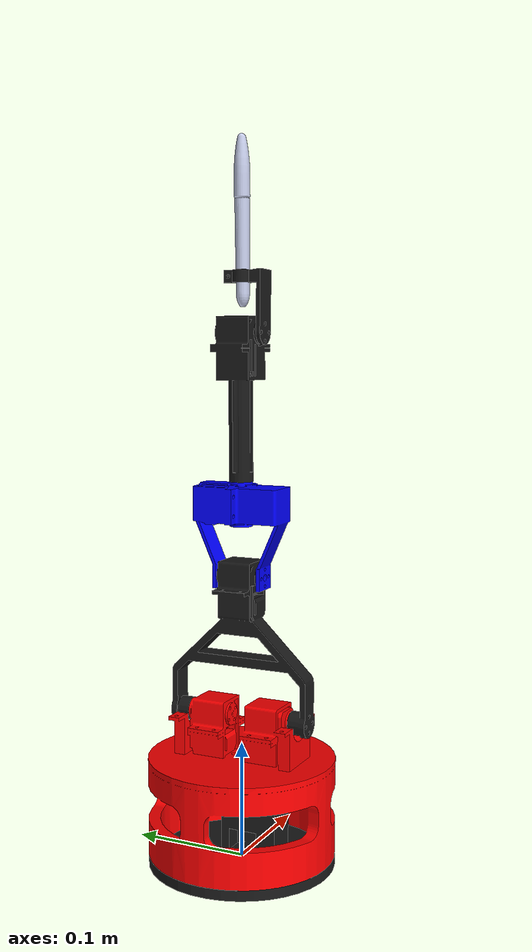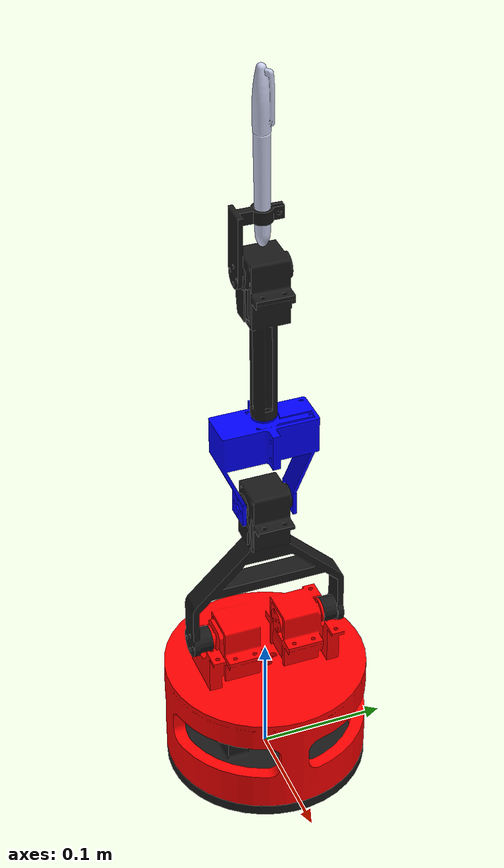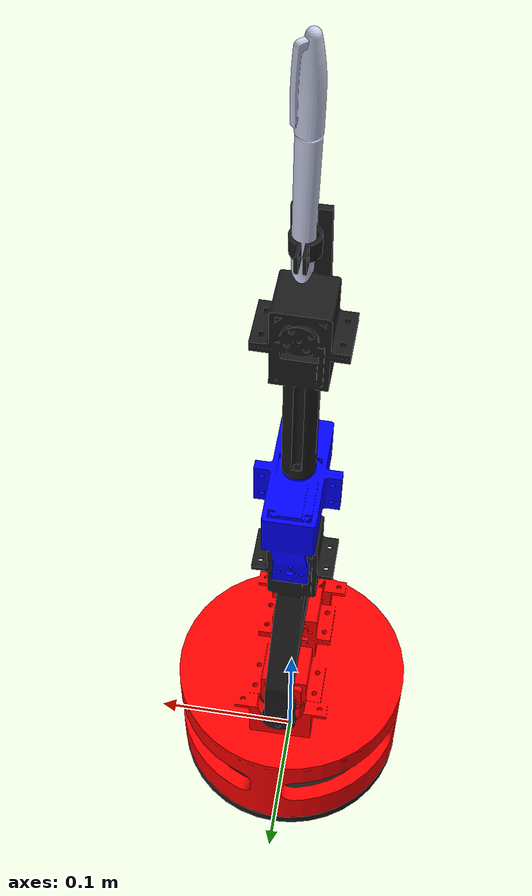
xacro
<?xml version="1.0"?>
<robot
  name="robot_arm_model" xmlns:xacro="http://www.ros.org/wiki/xacro">
  <!-- Macros -->
  <xacro:include filename="$(find robot_arm_model)/urdf/arm_model_control.xacro" />
  <!-- Robot Model -->
  <link
    name="base_link">
    <inertial>
      <origin
        xyz="-3.47801659000835E-09 -0.00137685013667123 0.00290238739920909"
        rpy="0 0 0" />
      <mass
        value="0.197561432605601" />
      <inertia
        ixx="0.000319788734568883"
        ixy="-2.33003929867543E-11"
        ixz="3.27701156372687E-12"
        iyy="0.000312074001215995"
        iyz="7.6168849433123E-06"
        izz="0.000587024967604945" />
    </inertial>
    <visual>
      <origin
        xyz="0 0 0"
        rpy="0 0 0" />
      <geometry>
        <mesh
          filename="package://robot_arm_model/meshes/base_link.STL" />
      </geometry>
      <material
        name="">
        <color
          rgba="0.1 0.1 0.1 1" />
      </material>
    </visual>
    <collision>
      <origin
        xyz="0 0 0"
        rpy="0 0 0" />
      <geometry>
        <mesh
          filename="package://robot_arm_model/meshes/base_link.STL" />
      </geometry>
    </collision>
  </link>
  <link
    name="Link_1">
    <inertial>
      <origin
        xyz="-1.35493166983774E-05 -1.94330657121711E-09 0.0096821016135524"
        rpy="0 0 0" />
      <mass
        value="0.229136443276943" />
      <inertia
        ixx="0.000256947607167861"
        ixy="7.89569731702562E-09"
        ixz="-1.05259206922075E-20"
        iyy="0.000202208144345894"
        iyz="-7.48590180122919E-19"
        izz="0.000407674877401527" />
    </inertial>
    <visual>
      <origin
        xyz="0 0 0"
        rpy="0 0 0" />
      <geometry>
        <mesh
          filename="package://robot_arm_model/meshes/Link_1.STL" />
      </geometry>
      <material
        name="">
        <color
          rgba="1.0 0.0 0.0 1" />
      </material>
    </visual>
    <collision>
      <origin
        xyz="0 0 0"
        rpy="0 0 0" />
      <geometry>
        <mesh
          filename="package://robot_arm_model/meshes/Link_1.STL" />
      </geometry>
    </collision>
  </link>
  <joint
    name="Joint_1"
    type="revolute">
    <origin
      xyz="0 0 0.0896"
      rpy="0 0 0" />
    <parent
      link="base_link" />
    <child
      link="Link_1" />
    <axis
      xyz="0 0 1" />
    <limit
      lower="-3.14"
      upper="3.14"
      effort="3"
      velocity="4.5" />
  </joint>
  <link
    name="Link_2">
    <inertial>
      <origin
        xyz="0.0770646017726428 0.000297060030787284 0.009026170415379"
        rpy="0 0 0" />
      <mass
        value="0.0998795287451604" />
      <inertia
        ixx="8.60911209529187E-05"
        ixy="-7.62397176355866E-08"
        ixz="-8.88841404267126E-09"
        iyy="0.000123190808693446"
        iyz="1.05290135762449E-08"
        izz="4.98247764993332E-05" />
    </inertial>
    <visual>
      <origin
        xyz="0 0 0"
        rpy="0 0 0" />
      <geometry>
        <mesh
          filename="package://robot_arm_model/meshes/Link_2.STL" />
      </geometry>
      <material
        name="">
        <color
          rgba="0.1 0.1 0.1 1" />
      </material>
    </visual>
    <collision>
      <origin
        xyz="0 0 0"
        rpy="0 0 0" />
      <geometry>
        <mesh
          filename="package://robot_arm_model/meshes/Link_2.STL" />
      </geometry>
    </collision>
  </link>
  <joint
    name="Joint_2"
    type="revolute">
    <origin
      xyz="-4.6306E-05 0.009105 0.035115"
      rpy="1.5708 -1.5708 0" />
    <parent
      link="Link_1" />
    <child
      link="Link_2" />
    <axis
      xyz="0 0 -1" />
    <limit
      lower="-1.57"
      upper="1.57"
      effort="3"
      velocity="4.5" />
  </joint>
  <link
    name="Link_3">
    <inertial>
      <origin
        xyz="0.0572527286378713 0.000498882729479441 -0.0190128236324398"
        rpy="0 0 0" />
      <mass
        value="0.0800891538655468" />
      <inertia
        ixx="1.78810644347874E-05"
        ixy="-8.52927406300288E-08"
        ixz="-9.94348562032073E-08"
        iyy="2.81208685051193E-05"
        iyz="-2.82607149488716E-10"
        izz="2.42971979807949E-05" />
    </inertial>
    <visual>
      <origin
        xyz="0 0 0"
        rpy="0 0 0" />
      <geometry>
        <mesh
          filename="package://robot_arm_model/meshes/Link_3.STL" />
      </geometry>
      <material
        name="">
        <color
          rgba="0.0 0.0 1.0 1" />
      </material>
    </visual>
    <collision>
      <origin
        xyz="0 0 0"
        rpy="0 0 0" />
      <geometry>
        <mesh
          filename="package://robot_arm_model/meshes/Link_3.STL" />
      </geometry>
    </collision>
  </link>
  <joint
    name="Joint_3"
    type="revolute">
    <origin
      xyz="0.1207 0.00050737 0.027705"
      rpy="0 0 0" />
    <parent
      link="Link_2" />
    <child
      link="Link_3" />
    <axis
      xyz="0 0 -1" />
    <limit
      lower="-3.14"
      upper="3.14"
      effort="3"
      velocity="4.5" />
  </joint>
  <link
    name="Link_4">
    <inertial>
      <origin
        xyz="0.000799958299252133 0.00011657439394902 0.0930954914379056"
        rpy="0 0 0" />
      <mass
        value="0.0674532689964478" />
      <inertia
        ixx="3.82940984655331E-05"
        ixy="1.47962436078869E-08"
        ixz="-2.38155462797139E-07"
        iyy="3.93756013071029E-05"
        iyz="8.71819780372487E-09"
        izz="9.68469338243075E-06" />
    </inertial>
    <visual>
      <origin
        xyz="0 0 0"
        rpy="0 0 0" />
      <geometry>
        <mesh
          filename="package://robot_arm_model/meshes/Link_4.STL" />
      </geometry>
      <material
        name="">
        <color
          rgba="0.1 0.1 0.1 1" />
      </material>
    </visual>
    <collision>
      <origin
        xyz="0 0 0"
        rpy="0 0 0" />
      <geometry>
        <mesh
          filename="package://robot_arm_model/meshes/Link_4.STL" />
      </geometry>
    </collision>
  </link>
  <joint
    name="Joint_4"
    type="revolute">
    <origin
      xyz="0.078329 0.00070001 -0.018605"
      rpy="1.5708 0 1.5708" />
    <parent
      link="Link_3" />
    <child
      link="Link_4" />
    <axis
      xyz="0 0 1" />
    <limit
      lower="-3.14"
      upper="3.14"
      effort="3"
      velocity="4.5" />
  </joint>
  <link
    name="Link_5">
    <inertial>
      <origin
        xyz="0.0287804050345146 -0.000560170268647429 -0.00227154374529588"
        rpy="0 0 0" />
      <mass
        value="0.00561283462760797" />
      <inertia
        ixx="6.29077871668555E-07"
        ixy="3.5213261615214E-08"
        ixz="4.57338260025281E-07"
        iyy="2.20459655958922E-06"
        iyz="-1.2825144232339E-08"
        izz="1.88108570714529E-06" />
    </inertial>
    <visual>
      <origin
        xyz="0 0 0"
        rpy="3.14 0 0" />
      <geometry>
        <mesh
          filename="package://robot_arm_model/meshes/Link_5.STL" />
      </geometry>
      <material
        name="">
        <color
          rgba="0.1 0.1 0.1 1" />
      </material>
    </visual>
    <collision>
      <origin
        xyz="0 0 0"
        rpy="0 0 0" />
      <geometry>
        <mesh
          filename="package://robot_arm_model/meshes/Link_5.STL" />
      </geometry>
    </collision>
  </link>
  <joint
    name="Joint_5"
    type="revolute">
    <origin
      xyz="0.0013061 0.017623 0.12261"
      rpy="1.5708 -1.5708 0" />
    <parent
      link="Link_4" />
    <child
      link="Link_5" />
    <axis
      xyz="0 0 1" />
    <limit
      lower="-1.57"
      upper="1.57"
      effort="3"
      velocity="4.5" />
  </joint>
  <link
    name="End_Effector">
    <inertial>
      <origin
        xyz="-0.0775912474744817 0.00163639600208887 0.000151563367798091"
        rpy="0 0 0" />
      <mass
        value="0.0104223528967023" />
      <inertia
        ixx="2.04826631450584E-07"
        ixy="8.62164522394554E-08"
        ixz="-9.16949402352726E-09"
        iyy="5.34613542504438E-06"
        iyz="-8.30081384390037E-09"
        izz="5.35018584213561E-06" />
    </inertial>
    <visual>
      <origin
        xyz="0 0 0"
        rpy="0 0 0" />
      <geometry>
        <mesh
          filename="package://robot_arm_model/meshes/End_Effector.STL" />
      </geometry>
      <material
        name="">
        <color
          rgba="0.792156862745098 0.819607843137255 0.933333333333333 1" />
      </material>
    </visual>
    <collision>
      <origin
        xyz="0 0 0"
        rpy="0 0 0" />
      <geometry>
        <mesh
          filename="package://robot_arm_model/meshes/End_Effector.STL" />
      </geometry>
    </collision>
  </link>
  <joint
    name="Joint_6"
    type="fixed">
    <origin
      xyz="0.15508 0 0.016567"
      rpy="0 0 0" />
    <parent
      link="Link_5" />
    <child
      link="End_Effector" />
    <axis
      xyz="1 0 0" />
  </joint>

  <ros2_control name="five_dof_position" type="system">
    <hardware>
      <plugin>feetech_ros2_driver/FeetechHardwareInterface</plugin>
      <param name="usb_port">/dev/ttyACM0</param>
    </hardware>
    <joint name="Joint_1">
      <param name="id">1</param>
      <command_interface name="position"/>
      <state_interface name="position">
        <param name="initial_value">0.0</param>
      </state_interface>
      <state_interface name="velocity"/>
    </joint>
    <joint name="Joint_2">
      <param name="id">2</param>
      <command_interface name="position"/>
      <state_interface name="position">
        <param name="initial_value">0.0</param>
      </state_interface>
      <state_interface name="velocity"/>
      </joint>
      <joint name="Joint_3">
        <param name="id">3</param>
        <command_interface name="position"/>
        <state_interface name="position">
          <param name="initial_value">0.0</param>
        </state_interface>
        <state_interface name="velocity"/>
      </joint>
      <joint name="Joint_4">
        <param name="id">4</param>
        <command_interface name="position"/>
        <state_interface name="position">
          <param name="initial_value">0.0</param>
        </state_interface>
        <state_interface name="velocity"/>
      </joint>
      <joint name="Joint_5">
        <param name="id">5</param>
        <command_interface name="position"/>
        <state_interface name="position">
          <param name="initial_value">0.0</param>
        </state_interface>
        <state_interface name="velocity"/>
      </joint>
  </ros2_control>
</robot>
